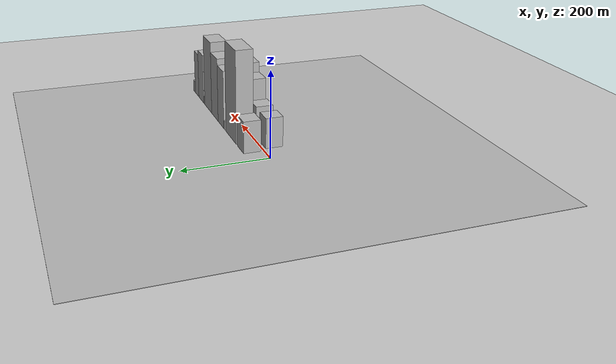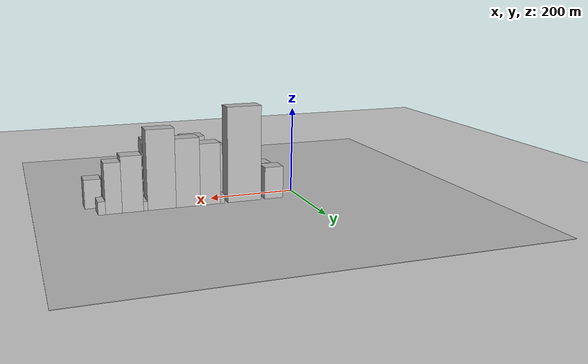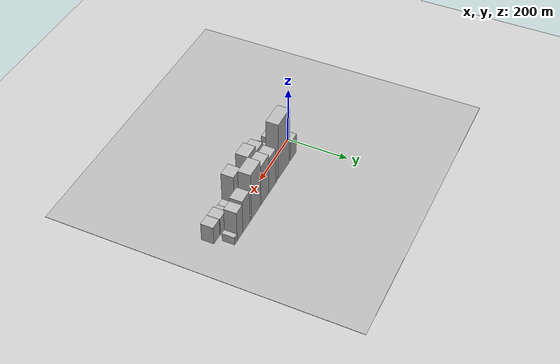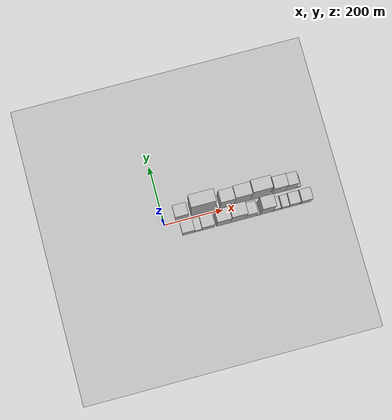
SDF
<?xml version="1.0" encoding="utf-8"?>

<sdf version="1.6">

   <world name="default">

      <gui fullscreen="0">

         <camera name="user_camera">

            <pose>-15 0 4.57585 0 0 0</pose>

            <view_controller>orbit</view_controller>

         </camera>

      </gui>

      <scene>

         <sky>

           <clouds>

             <speed>12</speed>

           </clouds>

         </sky>

         <ambient>0.4 0.4 0.4 1</ambient>

         <background>0.7 0.7 0.7 1</background>

         <shadows>1</shadows>

      </scene>

      <gravity>0 0 -9.8066</gravity>

      <magnetic_field>6e-06 2.3e-05 -4.2e-05</magnetic_field>

      <physics default="0" name="default_physics" type="ode">

         <ode>

            <solver>

               <type>quick</type>

               <iters>10</iters>

               <sor>1.0</sor>

               <use_dynamic_moi_rescaling>0</use_dynamic_moi_rescaling>

            </solver>

            <constraints>

               <cfm>0</cfm>

               <erp>0.2</erp>

               <contact_max_correcting_vel>100</contact_max_correcting_vel>

               <contact_surface_layer>0.001</contact_surface_layer>

            </constraints>

         </ode>

         <max_step_size>0.004</max_step_size>

         <real_time_factor>1</real_time_factor>

         <real_time_update_rate>250</real_time_update_rate>

      </physics>

      <light name="sun" type="directional">

         <cast_shadows>1</cast_shadows>

         <pose>0 0 10 0 0 0</pose>

         <diffuse>0.8 0.8 0.8 1</diffuse>

         <specular>0.2 0.2 0.2 1</specular>

         <attenuation>

            <range>1000</range>

            <constant>0.9</constant>

            <linear>0.01</linear>

            <quadratic>0.001</quadratic>

         </attenuation>

         <direction>-0.5 0.1 -0.9</direction>

      </light>

      <include>

         <name>ground_plane_1</name>

         <uri>model://HANNAS_ground_plane</uri>

         <pose>0 0 0  0 0 0</pose>

      </include>

      <include>

         <name>ground_plane_2</name>

         <uri>model://HANNAS_ground_plane</uri>

         <pose>100 0 0  0 0 0</pose>

      </include>

      <model name="building_1">

         <static>1</static>

         <pose frame="">62.2970 27.5000 0 0.000000 0.000000 1.570796</pose>

         <link name="link">

            <pose frame="">0 0 37.50 0 0 0</pose>

            <collision name="collision">

               <geometry>

                  <box>

                     <size>40.0000 44.5940 75.0000</size>

                  </box>

               </geometry>

               <max_contacts>10</max_contacts>

               <surface>

                  <contact>

                     <ode/>

                  </contact>

                  <bounce/>

                  <friction>

                     <torsional>

                        <ode/>

                     </torsional>

                     <ode/>

                  </friction>

               </surface>

            </collision>

            <visual name="visual">

               <cast_shadows>0</cast_shadows>

               <geometry>

                  <box>

                     <size>40.0000 44.5940 75.0000</size>

                  </box>

               </geometry>

               <material>

                  <script>

                     <uri>model://HANNAS_wall/materials/scripts</uri>

                     <uri>model://HANNAS_wall/materials/textures</uri>

                     <name>vrc/HANNAS_wall</name>

                  </script>

               </material>

            </visual>

            <self_collide>0</self_collide>

            <enable_wind>0</enable_wind>

            <kinematic>0</kinematic>

         </link>

      </model>

      <model name="building_2">

         <static>1</static>

         <pose frame="">133.5591 27.5000 0 0.000000 0.000000 1.570796</pose>

         <link name="link">

            <pose frame="">0 0 109.50 0 0 0</pose>

            <collision name="collision">

               <geometry>

                  <box>

                     <size>40.0000 79.9302 219.0000</size>

                  </box>

               </geometry>

               <max_contacts>10</max_contacts>

               <surface>

                  <contact>

                     <ode/>

                  </contact>

                  <bounce/>

                  <friction>

                     <torsional>

                        <ode/>

                     </torsional>

                     <ode/>

                  </friction>

               </surface>

            </collision>

            <visual name="visual">

               <cast_shadows>0</cast_shadows>

               <geometry>

                  <box>

                     <size>40.0000 79.9302 219.0000</size>

                  </box>

               </geometry>

               <material>

                  <script>

                     <uri>model://HANNAS_wall/materials/scripts</uri>

                     <uri>model://HANNAS_wall/materials/textures</uri>

                     <name>vrc/HANNAS_wall</name>

                  </script>

               </material>

            </visual>

            <self_collide>0</self_collide>

            <enable_wind>0</enable_wind>

            <kinematic>0</kinematic>

         </link>

      </model>

      <model name="building_3">

         <static>1</static>

         <pose frame="">186.0216 27.5000 0 0.000000 0.000000 1.570796</pose>

         <link name="link">

            <pose frame="">0 0 10.50 0 0 0</pose>

            <collision name="collision">

               <geometry>

                  <box>

                     <size>40.0000 8.9949 21.0000</size>

                  </box>

               </geometry>

               <max_contacts>10</max_contacts>

               <surface>

                  <contact>

                     <ode/>

                  </contact>

                  <bounce/>

                  <friction>

                     <torsional>

                        <ode/>

                     </torsional>

                     <ode/>

                  </friction>

               </surface>

            </collision>

            <visual name="visual">

               <cast_shadows>0</cast_shadows>

               <geometry>

                  <box>

                     <size>40.0000 8.9949 21.0000</size>

                  </box>

               </geometry>

               <material>

                  <script>

                     <uri>model://HANNAS_wall/materials/scripts</uri>

                     <uri>model://HANNAS_wall/materials/textures</uri>

                     <name>vrc/HANNAS_wall</name>

                  </script>

               </material>

            </visual>

            <self_collide>0</self_collide>

            <enable_wind>0</enable_wind>

            <kinematic>0</kinematic>

         </link>

      </model>

      <model name="building_4">

         <static>1</static>

         <pose frame="">214.2828 27.5000 0 0.000000 0.000000 1.570796</pose>

         <link name="link">

            <pose frame="">0 0 70.50 0 0 0</pose>

            <collision name="collision">

               <geometry>

                  <box>

                     <size>40.0000 47.5276 141.0000</size>

                  </box>

               </geometry>

               <max_contacts>10</max_contacts>

               <surface>

                  <contact>

                     <ode/>

                  </contact>

                  <bounce/>

                  <friction>

                     <torsional>

                        <ode/>

                     </torsional>

                     <ode/>

                  </friction>

               </surface>

            </collision>

            <visual name="visual">

               <cast_shadows>0</cast_shadows>

               <geometry>

                  <box>

                     <size>40.0000 47.5276 141.0000</size>

                  </box>

               </geometry>

               <material>

                  <script>

                     <uri>model://HANNAS_wall/materials/scripts</uri>

                     <uri>model://HANNAS_wall/materials/textures</uri>

                     <name>vrc/HANNAS_wall</name>

                  </script>

               </material>

            </visual>

            <self_collide>0</self_collide>

            <enable_wind>0</enable_wind>

            <kinematic>0</kinematic>

         </link>

      </model>

      <model name="building_5">

         <static>1</static>

         <pose frame="">265.6597 27.5000 0 0.000000 0.000000 1.570796</pose>

         <link name="link">

            <pose frame="">0 0 78.00 0 0 0</pose>

            <collision name="collision">

               <geometry>

                  <box>

                     <size>40.0000 55.2261 156.0000</size>

                  </box>

               </geometry>

               <max_contacts>10</max_contacts>

               <surface>

                  <contact>

                     <ode/>

                  </contact>

                  <bounce/>

                  <friction>

                     <torsional>

                        <ode/>

                     </torsional>

                     <ode/>

                  </friction>

               </surface>

            </collision>

            <visual name="visual">

               <cast_shadows>0</cast_shadows>

               <geometry>

                  <box>

                     <size>40.0000 55.2261 156.0000</size>

                  </box>

               </geometry>

               <material>

                  <script>

                     <uri>model://HANNAS_wall/materials/scripts</uri>

                     <uri>model://HANNAS_wall/materials/textures</uri>

                     <name>vrc/HANNAS_wall</name>

                  </script>

               </material>

            </visual>

            <self_collide>0</self_collide>

            <enable_wind>0</enable_wind>

            <kinematic>0</kinematic>

         </link>

      </model>

      <model name="building_6">

         <static>1</static>

         <pose frame="">325.1353 27.5000 0 0.000000 0.000000 1.570796</pose>

         <link name="link">

            <pose frame="">0 0 90.00 0 0 0</pose>

            <collision name="collision">

               <geometry>

                  <box>

                     <size>40.0000 63.7252 180.0000</size>

                  </box>

               </geometry>

               <max_contacts>10</max_contacts>

               <surface>

                  <contact>

                     <ode/>

                  </contact>

                  <bounce/>

                  <friction>

                     <torsional>

                        <ode/>

                     </torsional>

                     <ode/>

                  </friction>

               </surface>

            </collision>

            <visual name="visual">

               <cast_shadows>0</cast_shadows>

               <geometry>

                  <box>

                     <size>40.0000 63.7252 180.0000</size>

                  </box>

               </geometry>

               <material>

                  <script>

                     <uri>model://HANNAS_wall/materials/scripts</uri>

                     <uri>model://HANNAS_wall/materials/textures</uri>

                     <name>vrc/HANNAS_wall</name>

                  </script>

               </material>

            </visual>

            <self_collide>0</self_collide>

            <enable_wind>0</enable_wind>

            <kinematic>0</kinematic>

         </link>

      </model>

      <model name="building_7">

         <static>1</static>

         <pose frame="">361.7701 27.5000 0 0.000000 0.000000 1.570796</pose>

         <link name="link">

            <pose frame="">0 0 10.50 0 0 0</pose>

            <collision name="collision">

               <geometry>

                  <box>

                     <size>40.0000 9.5444 21.0000</size>

                  </box>

               </geometry>

               <max_contacts>10</max_contacts>

               <surface>

                  <contact>

                     <ode/>

                  </contact>

                  <bounce/>

                  <friction>

                     <torsional>

                        <ode/>

                     </torsional>

                     <ode/>

                  </friction>

               </surface>

            </collision>

            <visual name="visual">

               <cast_shadows>0</cast_shadows>

               <geometry>

                  <box>

                     <size>40.0000 9.5444 21.0000</size>

                  </box>

               </geometry>

               <material>

                  <script>

                     <uri>model://HANNAS_wall/materials/scripts</uri>

                     <uri>model://HANNAS_wall/materials/textures</uri>

                     <name>vrc/HANNAS_wall</name>

                  </script>

               </material>

            </visual>

            <self_collide>0</self_collide>

            <enable_wind>0</enable_wind>

            <kinematic>0</kinematic>

         </link>

      </model>

      <model name="building_8">

         <static>1</static>

         <pose frame="">389.7568 27.5000 0 0.000000 0.000000 1.570796</pose>

         <link name="link">

            <pose frame="">0 0 63.00 0 0 0</pose>

            <collision name="collision">

               <geometry>

                  <box>

                     <size>40.0000 46.4289 126.0000</size>

                  </box>

               </geometry>

               <max_contacts>10</max_contacts>

               <surface>

                  <contact>

                     <ode/>

                  </contact>

                  <bounce/>

                  <friction>

                     <torsional>

                        <ode/>

                     </torsional>

                     <ode/>

                  </friction>

               </surface>

            </collision>

            <visual name="visual">

               <cast_shadows>0</cast_shadows>

               <geometry>

                  <box>

                     <size>40.0000 46.4289 126.0000</size>

                  </box>

               </geometry>

               <material>

                  <script>

                     <uri>model://HANNAS_wall/materials/scripts</uri>

                     <uri>model://HANNAS_wall/materials/textures</uri>

                     <name>vrc/HANNAS_wall</name>

                  </script>

               </material>

            </visual>

            <self_collide>0</self_collide>

            <enable_wind>0</enable_wind>

            <kinematic>0</kinematic>

         </link>

      </model>

      <model name="building_9">

         <static>1</static>

         <pose frame="">430.9031 27.5000 0 0.000000 0.000000 1.570796</pose>

         <link name="link">

            <pose frame="">0 0 57.00 0 0 0</pose>

            <collision name="collision">

               <geometry>

                  <box>

                     <size>40.0000 35.8636 114.0000</size>

                  </box>

               </geometry>

               <max_contacts>10</max_contacts>

               <surface>

                  <contact>

                     <ode/>

                  </contact>

                  <bounce/>

                  <friction>

                     <torsional>

                        <ode/>

                     </torsional>

                     <ode/>

                  </friction>

               </surface>

            </collision>

            <visual name="visual">

               <cast_shadows>0</cast_shadows>

               <geometry>

                  <box>

                     <size>40.0000 35.8636 114.0000</size>

                  </box>

               </geometry>

               <material>

                  <script>

                     <uri>model://HANNAS_wall/materials/scripts</uri>

                     <uri>model://HANNAS_wall/materials/textures</uri>

                     <name>vrc/HANNAS_wall</name>

                  </script>

               </material>

            </visual>

            <self_collide>0</self_collide>

            <enable_wind>0</enable_wind>

            <kinematic>0</kinematic>

         </link>

      </model>

      <model name="building_10">

         <static>1</static>

         <pose frame="">456.8857 27.5000 0 0.000000 0.000000 1.570796</pose>

         <link name="link">

            <pose frame="">0 0 15.00 0 0 0</pose>

            <collision name="collision">

               <geometry>

                  <box>

                     <size>40.0000 16.1014 30.0000</size>

                  </box>

               </geometry>

               <max_contacts>10</max_contacts>

               <surface>

                  <contact>

                     <ode/>

                  </contact>

                  <bounce/>

                  <friction>

                     <torsional>

                        <ode/>

                     </torsional>

                     <ode/>

                  </friction>

               </surface>

            </collision>

            <visual name="visual">

               <cast_shadows>0</cast_shadows>

               <geometry>

                  <box>

                     <size>40.0000 16.1014 30.0000</size>

                  </box>

               </geometry>

               <material>

                  <script>

                     <uri>model://HANNAS_wall/materials/scripts</uri>

                     <uri>model://HANNAS_wall/materials/textures</uri>

                     <name>vrc/HANNAS_wall</name>

                  </script>

               </material>

            </visual>

            <self_collide>0</self_collide>

            <enable_wind>0</enable_wind>

            <kinematic>0</kinematic>

         </link>

      </model>

      <model name="building_11">

         <static>1</static>

         <pose frame="">70.5721 -27.5000 0 0.000000 0.000000 1.570796</pose>

         <link name="link">

            <pose frame="">0 0 36.00 0 0 0</pose>

            <collision name="collision">

               <geometry>

                  <box>

                     <size>40.0000 41.1442 72.0000</size>

                  </box>

               </geometry>

               <max_contacts>10</max_contacts>

               <surface>

                  <contact>

                     <ode/>

                  </contact>

                  <bounce/>

                  <friction>

                     <torsional>

                        <ode/>

                     </torsional>

                     <ode/>

                  </friction>

               </surface>

            </collision>

            <visual name="visual">

               <cast_shadows>0</cast_shadows>

               <geometry>

                  <box>

                     <size>40.0000 41.1442 72.0000</size>

                  </box>

               </geometry>

               <material>

                  <script>

                     <uri>model://HANNAS_wall/materials/scripts</uri>

                     <uri>model://HANNAS_wall/materials/textures</uri>

                     <name>vrc/HANNAS_wall</name>

                  </script>

               </material>

            </visual>

            <self_collide>0</self_collide>

            <enable_wind>0</enable_wind>

            <kinematic>0</kinematic>

         </link>

      </model>

      <model name="building_12">

         <static>1</static>

         <pose frame="">103.3553 -27.5000 0 0.000000 0.000000 1.570796</pose>

         <link name="link">

            <pose frame="">0 0 21.00 0 0 0</pose>

            <collision name="collision">

               <geometry>

                  <box>

                     <size>40.0000 24.4223 42.0000</size>

                  </box>

               </geometry>

               <max_contacts>10</max_contacts>

               <surface>

                  <contact>

                     <ode/>

                  </contact>

                  <bounce/>

                  <friction>

                     <torsional>

                        <ode/>

                     </torsional>

                     <ode/>

                  </friction>

               </surface>

            </collision>

            <visual name="visual">

               <cast_shadows>0</cast_shadows>

               <geometry>

                  <box>

                     <size>40.0000 24.4223 42.0000</size>

                  </box>

               </geometry>

               <material>

                  <script>

                     <uri>model://HANNAS_wall/materials/scripts</uri>

                     <uri>model://HANNAS_wall/materials/textures</uri>

                     <name>vrc/HANNAS_wall</name>

                  </script>

               </material>

            </visual>

            <self_collide>0</self_collide>

            <enable_wind>0</enable_wind>

            <kinematic>0</kinematic>

         </link>

      </model>

      <model name="building_13">

         <static>1</static>

         <pose frame="">136.7574 -27.5000 0 0.000000 0.000000 1.570796</pose>

         <link name="link">

            <pose frame="">0 0 37.50 0 0 0</pose>

            <collision name="collision">

               <geometry>

                  <box>

                     <size>40.0000 42.3819 75.0000</size>

                  </box>

               </geometry>

               <max_contacts>10</max_contacts>

               <surface>

                  <contact>

                     <ode/>

                  </contact>

                  <bounce/>

                  <friction>

                     <torsional>

                        <ode/>

                     </torsional>

                     <ode/>

                  </friction>

               </surface>

            </collision>

            <visual name="visual">

               <cast_shadows>0</cast_shadows>

               <geometry>

                  <box>

                     <size>40.0000 42.3819 75.0000</size>

                  </box>

               </geometry>

               <material>

                  <script>

                     <uri>model://HANNAS_wall/materials/scripts</uri>

                     <uri>model://HANNAS_wall/materials/textures</uri>

                     <name>vrc/HANNAS_wall</name>

                  </script>

               </material>

            </visual>

            <self_collide>0</self_collide>

            <enable_wind>0</enable_wind>

            <kinematic>0</kinematic>

         </link>

      </model>

      <model name="building_14">

         <static>1</static>

         <pose frame="">188.5107 -27.5000 0 0.000000 0.000000 1.570796</pose>

         <link name="link">

            <pose frame="">0 0 61.50 0 0 0</pose>

            <collision name="collision">

               <geometry>

                  <box>

                     <size>40.0000 47.1246 123.0000</size>

                  </box>

               </geometry>

               <max_contacts>10</max_contacts>

               <surface>

                  <contact>

                     <ode/>

                  </contact>

                  <bounce/>

                  <friction>

                     <torsional>

                        <ode/>

                     </torsional>

                     <ode/>

                  </friction>

               </surface>

            </collision>

            <visual name="visual">

               <cast_shadows>0</cast_shadows>

               <geometry>

                  <box>

                     <size>40.0000 47.1246 123.0000</size>

                  </box>

               </geometry>

               <material>

                  <script>

                     <uri>model://HANNAS_wall/materials/scripts</uri>

                     <uri>model://HANNAS_wall/materials/textures</uri>

                     <name>vrc/HANNAS_wall</name>

                  </script>

               </material>

            </visual>

            <self_collide>0</self_collide>

            <enable_wind>0</enable_wind>

            <kinematic>0</kinematic>

         </link>

      </model>

      <model name="building_15">

         <static>1</static>

         <pose frame="">237.8343 -27.5000 0 0.000000 0.000000 1.570796</pose>

         <link name="link">

            <pose frame="">0 0 73.50 0 0 0</pose>

            <collision name="collision">

               <geometry>

                  <box>

                     <size>40.0000 51.5227 147.0000</size>

                  </box>

               </geometry>

               <max_contacts>10</max_contacts>

               <surface>

                  <contact>

                     <ode/>

                  </contact>

                  <bounce/>

                  <friction>

                     <torsional>

                        <ode/>

                     </torsional>

                     <ode/>

                  </friction>

               </surface>

            </collision>

            <visual name="visual">

               <cast_shadows>0</cast_shadows>

               <geometry>

                  <box>

                     <size>40.0000 51.5227 147.0000</size>

                  </box>

               </geometry>

               <material>

                  <script>

                     <uri>model://HANNAS_wall/materials/scripts</uri>

                     <uri>model://HANNAS_wall/materials/textures</uri>

                     <name>vrc/HANNAS_wall</name>

                  </script>

               </material>

            </visual>

            <self_collide>0</self_collide>

            <enable_wind>0</enable_wind>

            <kinematic>0</kinematic>

         </link>

      </model>

      <model name="building_16">

         <static>1</static>

         <pose frame="">281.6355 -27.5000 0 0.000000 0.000000 1.570796</pose>

         <link name="link">

            <pose frame="">0 0 48.00 0 0 0</pose>

            <collision name="collision">

               <geometry>

                  <box>

                     <size>40.0000 36.0795 96.0000</size>

                  </box>

               </geometry>

               <max_contacts>10</max_contacts>

               <surface>

                  <contact>

                     <ode/>

                  </contact>

                  <bounce/>

                  <friction>

                     <torsional>

                        <ode/>

                     </torsional>

                     <ode/>

                  </friction>

               </surface>

            </collision>

            <visual name="visual">

               <cast_shadows>0</cast_shadows>

               <geometry>

                  <box>

                     <size>40.0000 36.0795 96.0000</size>

                  </box>

               </geometry>

               <material>

                  <script>

                     <uri>model://HANNAS_wall/materials/scripts</uri>

                     <uri>model://HANNAS_wall/materials/textures</uri>

                     <name>vrc/HANNAS_wall</name>

                  </script>

               </material>

            </visual>

            <self_collide>0</self_collide>

            <enable_wind>0</enable_wind>

            <kinematic>0</kinematic>

         </link>

      </model>

      <model name="building_17">

         <static>1</static>

         <pose frame="">305.3859 -27.5000 0 0.000000 0.000000 1.570796</pose>

         <link name="link">

            <pose frame="">0 0 13.50 0 0 0</pose>

            <collision name="collision">

               <geometry>

                  <box>

                     <size>40.0000 11.4213 27.0000</size>

                  </box>

               </geometry>

               <max_contacts>10</max_contacts>

               <surface>

                  <contact>

                     <ode/>

                  </contact>

                  <bounce/>

                  <friction>

                     <torsional>

                        <ode/>

                     </torsional>

                     <ode/>

                  </friction>

               </surface>

            </collision>

            <visual name="visual">

               <cast_shadows>0</cast_shadows>

               <geometry>

                  <box>

                     <size>40.0000 11.4213 27.0000</size>

                  </box>

               </geometry>

               <material>

                  <script>

                     <uri>model://HANNAS_wall/materials/scripts</uri>

                     <uri>model://HANNAS_wall/materials/textures</uri>

                     <name>vrc/HANNAS_wall</name>

                  </script>

               </material>

            </visual>

            <self_collide>0</self_collide>

            <enable_wind>0</enable_wind>

            <kinematic>0</kinematic>

         </link>

      </model>

      <model name="building_18">

         <static>1</static>

         <pose frame="">333.3992 -27.5000 0 0.000000 0.000000 1.570796</pose>

         <link name="link">

            <pose frame="">0 0 73.50 0 0 0</pose>

            <collision name="collision">

               <geometry>

                  <box>

                     <size>40.0000 44.6054 147.0000</size>

                  </box>

               </geometry>

               <max_contacts>10</max_contacts>

               <surface>

                  <contact>

                     <ode/>

                  </contact>

                  <bounce/>

                  <friction>

                     <torsional>

                        <ode/>

                     </torsional>

                     <ode/>

                  </friction>

               </surface>

            </collision>

            <visual name="visual">

               <cast_shadows>0</cast_shadows>

               <geometry>

                  <box>

                     <size>40.0000 44.6054 147.0000</size>

                  </box>

               </geometry>

               <material>

                  <script>

                     <uri>model://HANNAS_wall/materials/scripts</uri>

                     <uri>model://HANNAS_wall/materials/textures</uri>

                     <name>vrc/HANNAS_wall</name>

                  </script>

               </material>

            </visual>

            <self_collide>0</self_collide>

            <enable_wind>0</enable_wind>

            <kinematic>0</kinematic>

         </link>

      </model>

      <model name="building_19">

         <static>1</static>

         <pose frame="">368.4235 -27.5000 0 0.000000 0.000000 1.570796</pose>

         <link name="link">

            <pose frame="">0 0 22.50 0 0 0</pose>

            <collision name="collision">

               <geometry>

                  <box>

                     <size>40.0000 25.4431 45.0000</size>

                  </box>

               </geometry>

               <max_contacts>10</max_contacts>

               <surface>

                  <contact>

                     <ode/>

                  </contact>

                  <bounce/>

                  <friction>

                     <torsional>

                        <ode/>

                     </torsional>

                     <ode/>

                  </friction>

               </surface>

            </collision>

            <visual name="visual">

               <cast_shadows>0</cast_shadows>

               <geometry>

                  <box>

                     <size>40.0000 25.4431 45.0000</size>

                  </box>

               </geometry>

               <material>

                  <script>

                     <uri>model://HANNAS_wall/materials/scripts</uri>

                     <uri>model://HANNAS_wall/materials/textures</uri>

                     <name>vrc/HANNAS_wall</name>

                  </script>

               </material>

            </visual>

            <self_collide>0</self_collide>

            <enable_wind>0</enable_wind>

            <kinematic>0</kinematic>

         </link>

      </model>

      <model name="building_20">

         <static>1</static>

         <pose frame="">396.9458 -27.5000 0 0.000000 0.000000 1.570796</pose>

         <link name="link">

            <pose frame="">0 0 24.00 0 0 0</pose>

            <collision name="collision">

               <geometry>

                  <box>

                     <size>40.0000 25.6014 48.0000</size>

                  </box>

               </geometry>

               <max_contacts>10</max_contacts>

               <surface>

                  <contact>

                     <ode/>

                  </contact>

                  <bounce/>

                  <friction>

                     <torsional>

                        <ode/>

                     </torsional>

                     <ode/>

                  </friction>

               </surface>

            </collision>

            <visual name="visual">

               <cast_shadows>0</cast_shadows>

               <geometry>

                  <box>

                     <size>40.0000 25.6014 48.0000</size>

                  </box>

               </geometry>

               <material>

                  <script>

                     <uri>model://HANNAS_wall/materials/scripts</uri>

                     <uri>model://HANNAS_wall/materials/textures</uri>

                     <name>vrc/HANNAS_wall</name>

                  </script>

               </material>

            </visual>

            <self_collide>0</self_collide>

            <enable_wind>0</enable_wind>

            <kinematic>0</kinematic>

         </link>

      </model>

      <model name="building_21">

         <static>1</static>

         <pose frame="">427.9629 -27.5000 0 0.000000 0.000000 1.570796</pose>

         <link name="link">

            <pose frame="">0 0 31.50 0 0 0</pose>

            <collision name="collision">

               <geometry>

                  <box>

                     <size>40.0000 36.4329 63.0000</size>

                  </box>

               </geometry>

               <max_contacts>10</max_contacts>

               <surface>

                  <contact>

                     <ode/>

                  </contact>

                  <bounce/>

                  <friction>

                     <torsional>

                        <ode/>

                     </torsional>

                     <ode/>

                  </friction>

               </surface>

            </collision>

            <visual name="visual">

               <cast_shadows>0</cast_shadows>

               <geometry>

                  <box>

                     <size>40.0000 36.4329 63.0000</size>

                  </box>

               </geometry>

               <material>

                  <script>

                     <uri>model://HANNAS_wall/materials/scripts</uri>

                     <uri>model://HANNAS_wall/materials/textures</uri>

                     <name>vrc/HANNAS_wall</name>

                  </script>

               </material>

            </visual>

            <self_collide>0</self_collide>

            <enable_wind>0</enable_wind>

            <kinematic>0</kinematic>

         </link>

      </model>

      <model name="building_22">

         <static>1</static>

         <pose frame="">467.8389 -27.5000 0 0.000000 0.000000 1.570796</pose>

         <link name="link">

            <pose frame="">0 0 33.00 0 0 0</pose>

            <collision name="collision">

               <geometry>

                  <box>

                     <size>40.0000 37.3191 66.0000</size>

                  </box>

               </geometry>

               <max_contacts>10</max_contacts>

               <surface>

                  <contact>

                     <ode/>

                  </contact>

                  <bounce/>

                  <friction>

                     <torsional>

                        <ode/>

                     </torsional>

                     <ode/>

                  </friction>

               </surface>

            </collision>

            <visual name="visual">

               <cast_shadows>0</cast_shadows>

               <geometry>

                  <box>

                     <size>40.0000 37.3191 66.0000</size>

                  </box>

               </geometry>

               <material>

                  <script>

                     <uri>model://HANNAS_wall/materials/scripts</uri>

                     <uri>model://HANNAS_wall/materials/textures</uri>

                     <name>vrc/HANNAS_wall</name>

                  </script>

               </material>

            </visual>

            <self_collide>0</self_collide>

            <enable_wind>0</enable_wind>

            <kinematic>0</kinematic>

         </link>

      </model>

   </world>

</sdf>

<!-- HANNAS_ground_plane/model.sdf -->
<sdf version="1.4">
<model name="HANNAS_ground_plane">
  <static>true</static>
    <link name="link">
      <collision name="collision">
        <geometry>
          <plane>
            <normal>0 0 1</normal>
            <size>1000 1000</size>
          </plane>
        </geometry>
        <surface>
          <friction>
            <ode>
              <mu>100</mu>
              <mu2>50</mu2>
            </ode>
          </friction>
        </surface>
      </collision>
      <visual name="visual">
        <cast_shadows>false</cast_shadows>
        <geometry>
          <plane>
            <normal>0 0 1</normal>
            <size>1000 1000</size>
          </plane>
        </geometry>
        <material>
          <script>
            <uri>model://HANNAS_ground_plane/materials/scripts/HANNAS_ground_plane.material</uri>
	    <uri>model://HANNAS_ground_plane/materials/textures</uri>
            <name>HANNASGroundPlane/Image</name>
          </script>
        </material>
      </visual>
    </link>
  </model>
</sdf>
